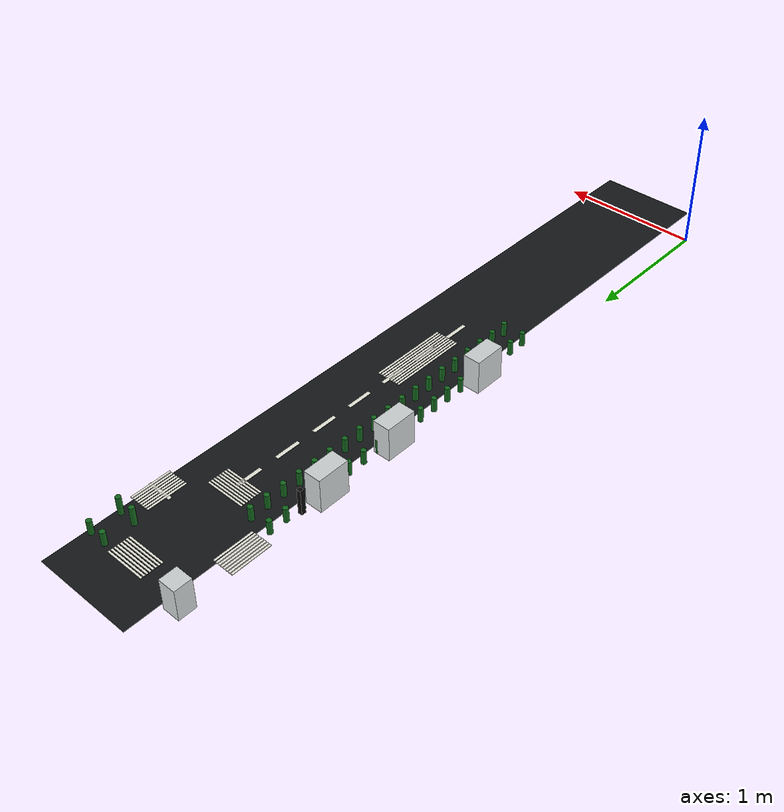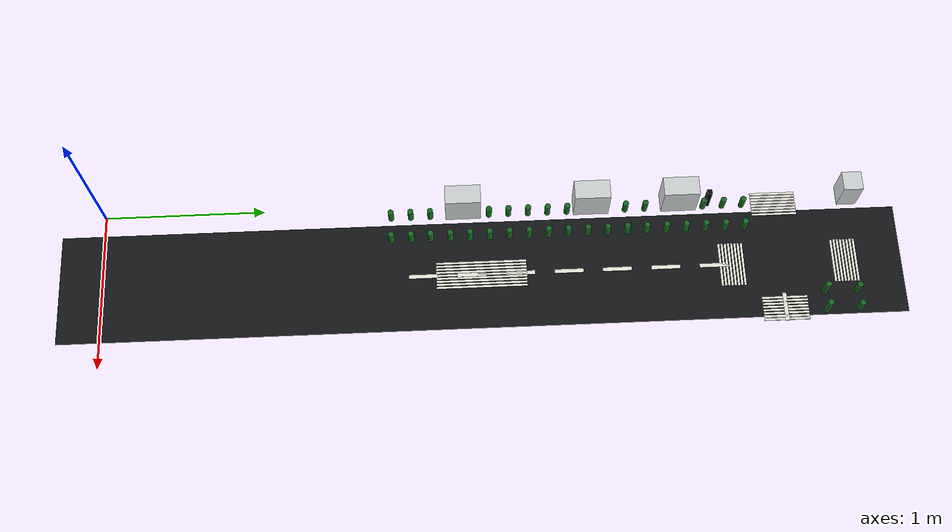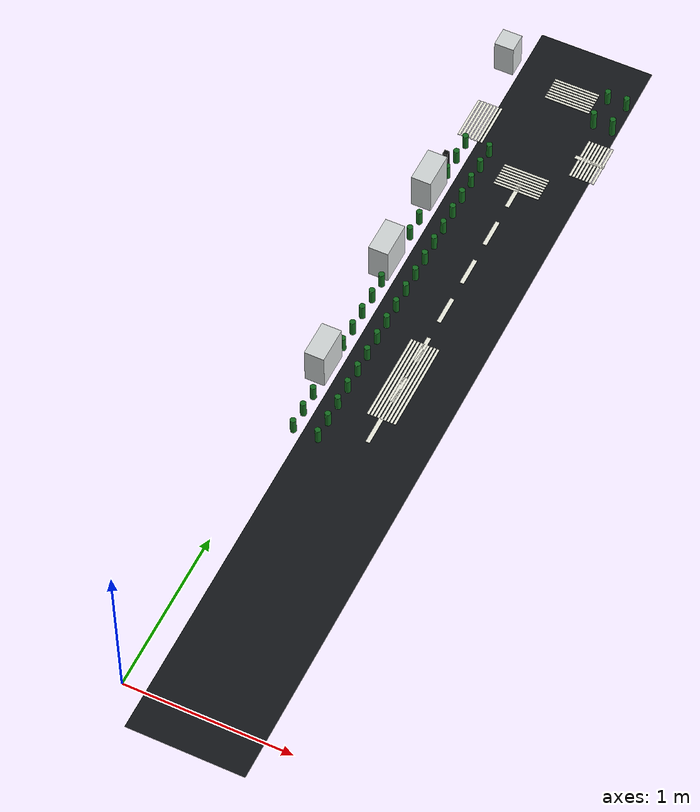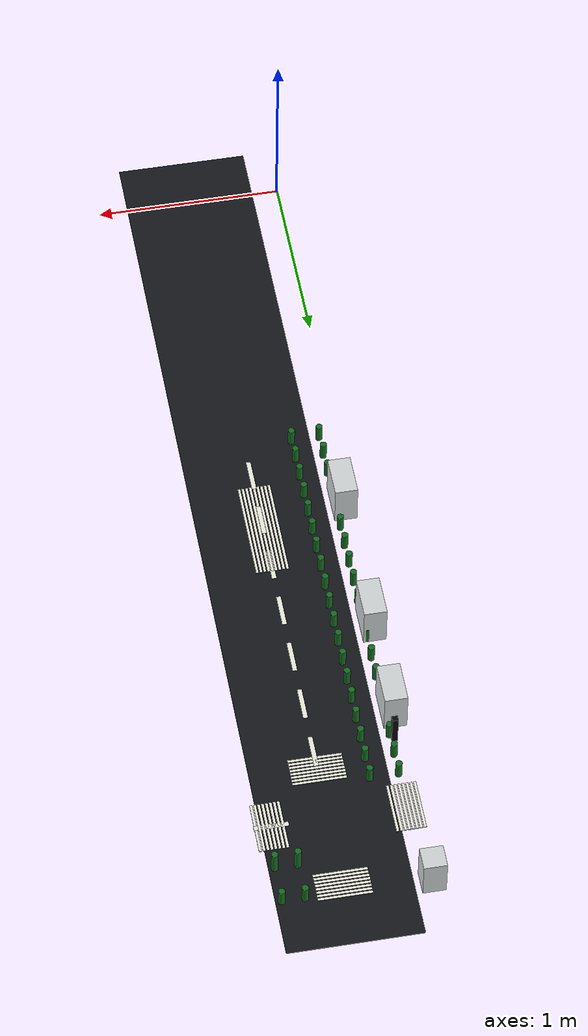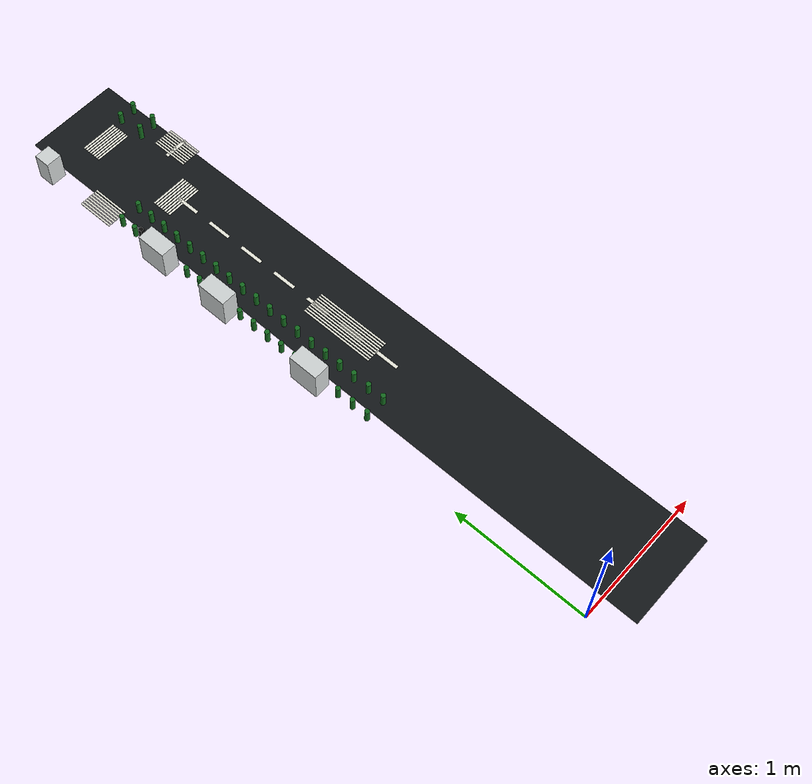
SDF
<sdf version="1.7">
 <world name="sandbox">
  <model name="RD-RING-W">
   <static>true</static>
   <pose>0.5 2.35 0.051000000000000004 0 0 0</pose>
   <link name="link">
    <collision name="collision">
     <geometry><box><size>0.7000000000000001 5.2 0.002</size></box></geometry>
    </collision>
    <visual name="visual">
     <geometry><box><size>0.7000000000000001 5.2 0.002</size></box></geometry>
     <material><ambient>0.08 0.09 0.1 1</ambient><diffuse>0.08 0.09 0.1 1</diffuse></material>
    </visual>
   </link>
  </model>
  <model name="LM-RING-W-05">
   <static>true</static>
   <pose>0.5 1.9900000000000002 0.05450000000000001 0 0 0</pose>
   <link name="link">
    <collision name="collision"><geometry><box><size>0.025 0.18 0.004</size></box></geometry></collision>
    <visual name="visual">
     <geometry><box><size>0.025 0.18 0.004</size></box></geometry>
     <material><ambient>0.93 0.93 0.88 1</ambient><diffuse>0.93 0.93 0.88 1</diffuse></material>
    </visual>
   </link>
  </model>
  <model name="LM-RING-W-06">
   <static>true</static>
   <pose>0.5 2.29 0.05450000000000001 0 0 0</pose>
   <link name="link">
    <collision name="collision"><geometry><box><size>0.025 0.18 0.004</size></box></geometry></collision>
    <visual name="visual">
     <geometry><box><size>0.025 0.18 0.004</size></box></geometry>
     <material><ambient>0.93 0.93 0.88 1</ambient><diffuse>0.93 0.93 0.88 1</diffuse></material>
    </visual>
   </link>
  </model>
  <model name="LM-RING-W-07">
   <static>true</static>
   <pose>0.5 2.59 0.05450000000000001 0 0 0</pose>
   <link name="link">
    <collision name="collision"><geometry><box><size>0.025 0.18 0.004</size></box></geometry></collision>
    <visual name="visual">
     <geometry><box><size>0.025 0.18 0.004</size></box></geometry>
     <material><ambient>0.93 0.93 0.88 1</ambient><diffuse>0.93 0.93 0.88 1</diffuse></material>
    </visual>
   </link>
  </model>
  <model name="LM-RING-W-08">
   <static>true</static>
   <pose>0.5 2.89 0.05450000000000001 0 0 0</pose>
   <link name="link">
    <collision name="collision"><geometry><box><size>0.025 0.18 0.004</size></box></geometry></collision>
    <visual name="visual">
     <geometry><box><size>0.025 0.18 0.004</size></box></geometry>
     <material><ambient>0.93 0.93 0.88 1</ambient><diffuse>0.93 0.93 0.88 1</diffuse></material>
    </visual>
   </link>
  </model>
  <model name="LM-RING-W-09">
   <static>true</static>
   <pose>0.5 3.19 0.05450000000000001 0 0 0</pose>
   <link name="link">
    <collision name="collision"><geometry><box><size>0.025 0.18 0.004</size></box></geometry></collision>
    <visual name="visual">
     <geometry><box><size>0.025 0.18 0.004</size></box></geometry>
     <material><ambient>0.93 0.93 0.88 1</ambient><diffuse>0.93 0.93 0.88 1</diffuse></material>
    </visual>
   </link>
  </model>
  <model name="LM-RING-W-10">
   <static>true</static>
   <pose>0.5 3.4899999999999998 0.05450000000000001 0 0 0</pose>
   <link name="link">
    <collision name="collision"><geometry><box><size>0.025 0.18 0.004</size></box></geometry></collision>
    <visual name="visual">
     <geometry><box><size>0.025 0.18 0.004</size></box></geometry>
     <material><ambient>0.93 0.93 0.88 1</ambient><diffuse>0.93 0.93 0.88 1</diffuse></material>
    </visual>
   </link>
  </model>
  <model name="LM-RING-W-11">
   <static>true</static>
   <pose>0.5 3.79 0.05450000000000001 0 0 0</pose>
   <link name="link">
    <collision name="collision"><geometry><box><size>0.025 0.18 0.004</size></box></geometry></collision>
    <visual name="visual">
     <geometry><box><size>0.025 0.18 0.004</size></box></geometry>
     <material><ambient>0.93 0.93 0.88 1</ambient><diffuse>0.93 0.93 0.88 1</diffuse></material>
    </visual>
   </link>
  </model>
  <model name="LM-RING-N-01">
   <static>true</static>
   <pose>0.79 4.2 0.05450000000000001 0 0 0</pose>
   <link name="link">
    <collision name="collision"><geometry><box><size>0.18 0.025 0.004</size></box></geometry></collision>
    <visual name="visual">
     <geometry><box><size>0.18 0.025 0.004</size></box></geometry>
     <material><ambient>0.93 0.93 0.88 1</ambient><diffuse>0.93 0.93 0.88 1</diffuse></material>
    </visual>
   </link>
  </model>
  <model name="CW-NW-X-01">
   <static>true</static>
   <pose>0.5 3.83 0.05450000000000001 0 0 0</pose>
   <link name="link">
    <collision name="collision"><geometry><box><size>0.28 0.014 0.004</size></box></geometry></collision>
    <visual name="visual">
     <geometry><box><size>0.28 0.014 0.004</size></box></geometry>
     <material><ambient>0.93 0.93 0.88 1</ambient><diffuse>0.93 0.93 0.88 1</diffuse></material>
    </visual>
   </link>
  </model>
  <model name="CW-NW-X-02">
   <static>true</static>
   <pose>0.5 3.85 0.05450000000000001 0 0 0</pose>
   <link name="link">
    <collision name="collision"><geometry><box><size>0.28 0.014 0.004</size></box></geometry></collision>
    <visual name="visual">
     <geometry><box><size>0.28 0.014 0.004</size></box></geometry>
     <material><ambient>0.93 0.93 0.88 1</ambient><diffuse>0.93 0.93 0.88 1</diffuse></material>
    </visual>
   </link>
  </model>
  <model name="CW-NW-X-03">
   <static>true</static>
   <pose>0.5 3.87 0.05450000000000001 0 0 0</pose>
   <link name="link">
    <collision name="collision"><geometry><box><size>0.28 0.014 0.004</size></box></geometry></collision>
    <visual name="visual">
     <geometry><box><size>0.28 0.014 0.004</size></box></geometry>
     <material><ambient>0.93 0.93 0.88 1</ambient><diffuse>0.93 0.93 0.88 1</diffuse></material>
    </visual>
   </link>
  </model>
  <model name="CW-NW-X-04">
   <static>true</static>
   <pose>0.5 3.89 0.05450000000000001 0 0 0</pose>
   <link name="link">
    <collision name="collision"><geometry><box><size>0.28 0.014 0.004</size></box></geometry></collision>
    <visual name="visual">
     <geometry><box><size>0.28 0.014 0.004</size></box></geometry>
     <material><ambient>0.93 0.93 0.88 1</ambient><diffuse>0.93 0.93 0.88 1</diffuse></material>
    </visual>
   </link>
  </model>
  <model name="CW-NW-X-05">
   <static>true</static>
   <pose>0.5 3.9099999999999997 0.05450000000000001 0 0 0</pose>
   <link name="link">
    <collision name="collision"><geometry><box><size>0.28 0.014 0.004</size></box></geometry></collision>
    <visual name="visual">
     <geometry><box><size>0.28 0.014 0.004</size></box></geometry>
     <material><ambient>0.93 0.93 0.88 1</ambient><diffuse>0.93 0.93 0.88 1</diffuse></material>
    </visual>
   </link>
  </model>
  <model name="CW-NW-X-06">
   <static>true</static>
   <pose>0.5 3.9299999999999997 0.05450000000000001 0 0 0</pose>
   <link name="link">
    <collision name="collision"><geometry><box><size>0.28 0.014 0.004</size></box></geometry></collision>
    <visual name="visual">
     <geometry><box><size>0.28 0.014 0.004</size></box></geometry>
     <material><ambient>0.93 0.93 0.88 1</ambient><diffuse>0.93 0.93 0.88 1</diffuse></material>
    </visual>
   </link>
  </model>
  <model name="CW-NW-X-07">
   <static>true</static>
   <pose>0.5 3.9499999999999997 0.05450000000000001 0 0 0</pose>
   <link name="link">
    <collision name="collision"><geometry><box><size>0.28 0.014 0.004</size></box></geometry></collision>
    <visual name="visual">
     <geometry><box><size>0.28 0.014 0.004</size></box></geometry>
     <material><ambient>0.93 0.93 0.88 1</ambient><diffuse>0.93 0.93 0.88 1</diffuse></material>
    </visual>
   </link>
  </model>
  <model name="CW-NW-X-08">
   <static>true</static>
   <pose>0.5 3.9699999999999998 0.05450000000000001 0 0 0</pose>
   <link name="link">
    <collision name="collision"><geometry><box><size>0.28 0.014 0.004</size></box></geometry></collision>
    <visual name="visual">
     <geometry><box><size>0.28 0.014 0.004</size></box></geometry>
     <material><ambient>0.93 0.93 0.88 1</ambient><diffuse>0.93 0.93 0.88 1</diffuse></material>
    </visual>
   </link>
  </model>
  <model name="CW-NW-Y-01">
   <static>true</static>
   <pose>0.73 4.2 0.05450000000000001 0 0 0</pose>
   <link name="link">
    <collision name="collision"><geometry><box><size>0.014 0.28 0.004</size></box></geometry></collision>
    <visual name="visual">
     <geometry><box><size>0.014 0.28 0.004</size></box></geometry>
     <material><ambient>0.93 0.93 0.88 1</ambient><diffuse>0.93 0.93 0.88 1</diffuse></material>
    </visual>
   </link>
  </model>
  <model name="CW-NW-Y-02">
   <static>true</static>
   <pose>0.75 4.2 0.05450000000000001 0 0 0</pose>
   <link name="link">
    <collision name="collision"><geometry><box><size>0.014 0.28 0.004</size></box></geometry></collision>
    <visual name="visual">
     <geometry><box><size>0.014 0.28 0.004</size></box></geometry>
     <material><ambient>0.93 0.93 0.88 1</ambient><diffuse>0.93 0.93 0.88 1</diffuse></material>
    </visual>
   </link>
  </model>
  <model name="CW-NW-Y-03">
   <static>true</static>
   <pose>0.77 4.2 0.05450000000000001 0 0 0</pose>
   <link name="link">
    <collision name="collision"><geometry><box><size>0.014 0.28 0.004</size></box></geometry></collision>
    <visual name="visual">
     <geometry><box><size>0.014 0.28 0.004</size></box></geometry>
     <material><ambient>0.93 0.93 0.88 1</ambient><diffuse>0.93 0.93 0.88 1</diffuse></material>
    </visual>
   </link>
  </model>
  <model name="CW-NW-Y-04">
   <static>true</static>
   <pose>0.79 4.2 0.05450000000000001 0 0 0</pose>
   <link name="link">
    <collision name="collision"><geometry><box><size>0.014 0.28 0.004</size></box></geometry></collision>
    <visual name="visual">
     <geometry><box><size>0.014 0.28 0.004</size></box></geometry>
     <material><ambient>0.93 0.93 0.88 1</ambient><diffuse>0.93 0.93 0.88 1</diffuse></material>
    </visual>
   </link>
  </model>
  <model name="CW-NW-Y-05">
   <static>true</static>
   <pose>0.81 4.2 0.05450000000000001 0 0 0</pose>
   <link name="link">
    <collision name="collision"><geometry><box><size>0.014 0.28 0.004</size></box></geometry></collision>
    <visual name="visual">
     <geometry><box><size>0.014 0.28 0.004</size></box></geometry>
     <material><ambient>0.93 0.93 0.88 1</ambient><diffuse>0.93 0.93 0.88 1</diffuse></material>
    </visual>
   </link>
  </model>
  <model name="CW-NW-Y-06">
   <static>true</static>
   <pose>0.8300000000000001 4.2 0.05450000000000001 0 0 0</pose>
   <link name="link">
    <collision name="collision"><geometry><box><size>0.014 0.28 0.004</size></box></geometry></collision>
    <visual name="visual">
     <geometry><box><size>0.014 0.28 0.004</size></box></geometry>
     <material><ambient>0.93 0.93 0.88 1</ambient><diffuse>0.93 0.93 0.88 1</diffuse></material>
    </visual>
   </link>
  </model>
  <model name="CW-NW-Y-07">
   <static>true</static>
   <pose>0.8500000000000001 4.2 0.05450000000000001 0 0 0</pose>
   <link name="link">
    <collision name="collision"><geometry><box><size>0.014 0.28 0.004</size></box></geometry></collision>
    <visual name="visual">
     <geometry><box><size>0.014 0.28 0.004</size></box></geometry>
     <material><ambient>0.93 0.93 0.88 1</ambient><diffuse>0.93 0.93 0.88 1</diffuse></material>
    </visual>
   </link>
  </model>
  <model name="CW-NW-Y-08">
   <static>true</static>
   <pose>0.8700000000000001 4.2 0.05450000000000001 0 0 0</pose>
   <link name="link">
    <collision name="collision"><geometry><box><size>0.014 0.28 0.004</size></box></geometry></collision>
    <visual name="visual">
     <geometry><box><size>0.014 0.28 0.004</size></box></geometry>
     <material><ambient>0.93 0.93 0.88 1</ambient><diffuse>0.93 0.93 0.88 1</diffuse></material>
    </visual>
   </link>
  </model>
  <model name="CW-C-W-01">
   <static>true</static>
   <pose>0.42 2.35 0.05450000000000001 0 0 0</pose>
   <link name="link">
    <collision name="collision"><geometry><box><size>0.014 0.56 0.004</size></box></geometry></collision>
    <visual name="visual">
     <geometry><box><size>0.014 0.56 0.004</size></box></geometry>
     <material><ambient>0.93 0.93 0.88 1</ambient><diffuse>0.93 0.93 0.88 1</diffuse></material>
    </visual>
   </link>
  </model>
  <model name="CW-C-W-02">
   <static>true</static>
   <pose>0.44 2.35 0.05450000000000001 0 0 0</pose>
   <link name="link">
    <collision name="collision"><geometry><box><size>0.014 0.56 0.004</size></box></geometry></collision>
    <visual name="visual">
     <geometry><box><size>0.014 0.56 0.004</size></box></geometry>
     <material><ambient>0.93 0.93 0.88 1</ambient><diffuse>0.93 0.93 0.88 1</diffuse></material>
    </visual>
   </link>
  </model>
  <model name="CW-C-W-03">
   <static>true</static>
   <pose>0.46 2.35 0.05450000000000001 0 0 0</pose>
   <link name="link">
    <collision name="collision"><geometry><box><size>0.014 0.56 0.004</size></box></geometry></collision>
    <visual name="visual">
     <geometry><box><size>0.014 0.56 0.004</size></box></geometry>
     <material><ambient>0.93 0.93 0.88 1</ambient><diffuse>0.93 0.93 0.88 1</diffuse></material>
    </visual>
   </link>
  </model>
  <model name="CW-C-W-04">
   <static>true</static>
   <pose>0.48 2.35 0.05450000000000001 0 0 0</pose>
   <link name="link">
    <collision name="collision"><geometry><box><size>0.014 0.56 0.004</size></box></geometry></collision>
    <visual name="visual">
     <geometry><box><size>0.014 0.56 0.004</size></box></geometry>
     <material><ambient>0.93 0.93 0.88 1</ambient><diffuse>0.93 0.93 0.88 1</diffuse></material>
    </visual>
   </link>
  </model>
  <model name="CW-C-W-05">
   <static>true</static>
   <pose>0.5 2.35 0.05450000000000001 0 0 0</pose>
   <link name="link">
    <collision name="collision"><geometry><box><size>0.014 0.56 0.004</size></box></geometry></collision>
    <visual name="visual">
     <geometry><box><size>0.014 0.56 0.004</size></box></geometry>
     <material><ambient>0.93 0.93 0.88 1</ambient><diffuse>0.93 0.93 0.88 1</diffuse></material>
    </visual>
   </link>
  </model>
  <model name="CW-C-W-06">
   <static>true</static>
   <pose>0.52 2.35 0.05450000000000001 0 0 0</pose>
   <link name="link">
    <collision name="collision"><geometry><box><size>0.014 0.56 0.004</size></box></geometry></collision>
    <visual name="visual">
     <geometry><box><size>0.014 0.56 0.004</size></box></geometry>
     <material><ambient>0.93 0.93 0.88 1</ambient><diffuse>0.93 0.93 0.88 1</diffuse></material>
    </visual>
   </link>
  </model>
  <model name="CW-C-W-07">
   <static>true</static>
   <pose>0.54 2.35 0.05450000000000001 0 0 0</pose>
   <link name="link">
    <collision name="collision"><geometry><box><size>0.014 0.56 0.004</size></box></geometry></collision>
    <visual name="visual">
     <geometry><box><size>0.014 0.56 0.004</size></box></geometry>
     <material><ambient>0.93 0.93 0.88 1</ambient><diffuse>0.93 0.93 0.88 1</diffuse></material>
    </visual>
   </link>
  </model>
  <model name="CW-C-W-08">
   <static>true</static>
   <pose>0.56 2.35 0.05450000000000001 0 0 0</pose>
   <link name="link">
    <collision name="collision"><geometry><box><size>0.014 0.56 0.004</size></box></geometry></collision>
    <visual name="visual">
     <geometry><box><size>0.014 0.56 0.004</size></box></geometry>
     <material><ambient>0.93 0.93 0.88 1</ambient><diffuse>0.93 0.93 0.88 1</diffuse></material>
    </visual>
   </link>
  </model>
  <model name="CW-C-W-09">
   <static>true</static>
   <pose>0.58 2.35 0.05450000000000001 0 0 0</pose>
   <link name="link">
    <collision name="collision"><geometry><box><size>0.014 0.56 0.004</size></box></geometry></collision>
    <visual name="visual">
     <geometry><box><size>0.014 0.56 0.004</size></box></geometry>
     <material><ambient>0.93 0.93 0.88 1</ambient><diffuse>0.93 0.93 0.88 1</diffuse></material>
    </visual>
   </link>
  </model>
  <model name="CW-EXT-W-N-01">
   <static>true</static>
   <pose>0.5 4.53 0.05450000000000001 0 0 0</pose>
   <link name="link">
    <collision name="collision"><geometry><box><size>0.28 0.014 0.004</size></box></geometry></collision>
    <visual name="visual">
     <geometry><box><size>0.28 0.014 0.004</size></box></geometry>
     <material><ambient>0.93 0.93 0.88 1</ambient><diffuse>0.93 0.93 0.88 1</diffuse></material>
    </visual>
   </link>
  </model>
  <model name="CW-EXT-W-N-02">
   <static>true</static>
   <pose>0.5 4.550000000000001 0.05450000000000001 0 0 0</pose>
   <link name="link">
    <collision name="collision"><geometry><box><size>0.28 0.014 0.004</size></box></geometry></collision>
    <visual name="visual">
     <geometry><box><size>0.28 0.014 0.004</size></box></geometry>
     <material><ambient>0.93 0.93 0.88 1</ambient><diffuse>0.93 0.93 0.88 1</diffuse></material>
    </visual>
   </link>
  </model>
  <model name="CW-EXT-W-N-03">
   <static>true</static>
   <pose>0.5 4.57 0.05450000000000001 0 0 0</pose>
   <link name="link">
    <collision name="collision"><geometry><box><size>0.28 0.014 0.004</size></box></geometry></collision>
    <visual name="visual">
     <geometry><box><size>0.28 0.014 0.004</size></box></geometry>
     <material><ambient>0.93 0.93 0.88 1</ambient><diffuse>0.93 0.93 0.88 1</diffuse></material>
    </visual>
   </link>
  </model>
  <model name="CW-EXT-W-N-04">
   <static>true</static>
   <pose>0.5 4.590000000000001 0.05450000000000001 0 0 0</pose>
   <link name="link">
    <collision name="collision"><geometry><box><size>0.28 0.014 0.004</size></box></geometry></collision>
    <visual name="visual">
     <geometry><box><size>0.28 0.014 0.004</size></box></geometry>
     <material><ambient>0.93 0.93 0.88 1</ambient><diffuse>0.93 0.93 0.88 1</diffuse></material>
    </visual>
   </link>
  </model>
  <model name="CW-EXT-W-N-05">
   <static>true</static>
   <pose>0.5 4.61 0.05450000000000001 0 0 0</pose>
   <link name="link">
    <collision name="collision"><geometry><box><size>0.28 0.014 0.004</size></box></geometry></collision>
    <visual name="visual">
     <geometry><box><size>0.28 0.014 0.004</size></box></geometry>
     <material><ambient>0.93 0.93 0.88 1</ambient><diffuse>0.93 0.93 0.88 1</diffuse></material>
    </visual>
   </link>
  </model>
  <model name="CW-EXT-W-N-06">
   <static>true</static>
   <pose>0.5 4.630000000000001 0.05450000000000001 0 0 0</pose>
   <link name="link">
    <collision name="collision"><geometry><box><size>0.28 0.014 0.004</size></box></geometry></collision>
    <visual name="visual">
     <geometry><box><size>0.28 0.014 0.004</size></box></geometry>
     <material><ambient>0.93 0.93 0.88 1</ambient><diffuse>0.93 0.93 0.88 1</diffuse></material>
    </visual>
   </link>
  </model>
  <model name="CW-EXT-W-N-07">
   <static>true</static>
   <pose>0.5 4.65 0.05450000000000001 0 0 0</pose>
   <link name="link">
    <collision name="collision"><geometry><box><size>0.28 0.014 0.004</size></box></geometry></collision>
    <visual name="visual">
     <geometry><box><size>0.28 0.014 0.004</size></box></geometry>
     <material><ambient>0.93 0.93 0.88 1</ambient><diffuse>0.93 0.93 0.88 1</diffuse></material>
    </visual>
   </link>
  </model>
  <model name="CW-EXT-W-N-08">
   <static>true</static>
   <pose>0.5 4.670000000000001 0.05450000000000001 0 0 0</pose>
   <link name="link">
    <collision name="collision"><geometry><box><size>0.28 0.014 0.004</size></box></geometry></collision>
    <visual name="visual">
     <geometry><box><size>0.28 0.014 0.004</size></box></geometry>
     <material><ambient>0.93 0.93 0.88 1</ambient><diffuse>0.93 0.93 0.88 1</diffuse></material>
    </visual>
   </link>
  </model>
  <model name="CW-EXT-N-W-01">
   <static>true</static>
   <pose>0.03 4.2 0.05450000000000001 0 0 0</pose>
   <link name="link">
    <collision name="collision"><geometry><box><size>0.014 0.28 0.004</size></box></geometry></collision>
    <visual name="visual">
     <geometry><box><size>0.014 0.28 0.004</size></box></geometry>
     <material><ambient>0.93 0.93 0.88 1</ambient><diffuse>0.93 0.93 0.88 1</diffuse></material>
    </visual>
   </link>
  </model>
  <model name="CW-EXT-N-W-02">
   <static>true</static>
   <pose>0.05 4.2 0.05450000000000001 0 0 0</pose>
   <link name="link">
    <collision name="collision"><geometry><box><size>0.014 0.28 0.004</size></box></geometry></collision>
    <visual name="visual">
     <geometry><box><size>0.014 0.28 0.004</size></box></geometry>
     <material><ambient>0.93 0.93 0.88 1</ambient><diffuse>0.93 0.93 0.88 1</diffuse></material>
    </visual>
   </link>
  </model>
  <model name="CW-EXT-N-W-03">
   <static>true</static>
   <pose>0.07 4.2 0.05450000000000001 0 0 0</pose>
   <link name="link">
    <collision name="collision"><geometry><box><size>0.014 0.28 0.004</size></box></geometry></collision>
    <visual name="visual">
     <geometry><box><size>0.014 0.28 0.004</size></box></geometry>
     <material><ambient>0.93 0.93 0.88 1</ambient><diffuse>0.93 0.93 0.88 1</diffuse></material>
    </visual>
   </link>
  </model>
  <model name="CW-EXT-N-W-04">
   <static>true</static>
   <pose>0.09000000000000001 4.2 0.05450000000000001 0 0 0</pose>
   <link name="link">
    <collision name="collision"><geometry><box><size>0.014 0.28 0.004</size></box></geometry></collision>
    <visual name="visual">
     <geometry><box><size>0.014 0.28 0.004</size></box></geometry>
     <material><ambient>0.93 0.93 0.88 1</ambient><diffuse>0.93 0.93 0.88 1</diffuse></material>
    </visual>
   </link>
  </model>
  <model name="CW-EXT-N-W-05">
   <static>true</static>
   <pose>0.11 4.2 0.05450000000000001 0 0 0</pose>
   <link name="link">
    <collision name="collision"><geometry><box><size>0.014 0.28 0.004</size></box></geometry></collision>
    <visual name="visual">
     <geometry><box><size>0.014 0.28 0.004</size></box></geometry>
     <material><ambient>0.93 0.93 0.88 1</ambient><diffuse>0.93 0.93 0.88 1</diffuse></material>
    </visual>
   </link>
  </model>
  <model name="CW-EXT-N-W-06">
   <static>true</static>
   <pose>0.13 4.2 0.05450000000000001 0 0 0</pose>
   <link name="link">
    <collision name="collision"><geometry><box><size>0.014 0.28 0.004</size></box></geometry></collision>
    <visual name="visual">
     <geometry><box><size>0.014 0.28 0.004</size></box></geometry>
     <material><ambient>0.93 0.93 0.88 1</ambient><diffuse>0.93 0.93 0.88 1</diffuse></material>
    </visual>
   </link>
  </model>
  <model name="CW-EXT-N-W-07">
   <static>true</static>
   <pose>0.15000000000000002 4.2 0.05450000000000001 0 0 0</pose>
   <link name="link">
    <collision name="collision"><geometry><box><size>0.014 0.28 0.004</size></box></geometry></collision>
    <visual name="visual">
     <geometry><box><size>0.014 0.28 0.004</size></box></geometry>
     <material><ambient>0.93 0.93 0.88 1</ambient><diffuse>0.93 0.93 0.88 1</diffuse></material>
    </visual>
   </link>
  </model>
  <model name="CW-EXT-N-W-08">
   <static>true</static>
   <pose>0.17 4.2 0.05450000000000001 0 0 0</pose>
   <link name="link">
    <collision name="collision"><geometry><box><size>0.014 0.28 0.004</size></box></geometry></collision>
    <visual name="visual">
     <geometry><box><size>0.014 0.28 0.004</size></box></geometry>
     <material><ambient>0.93 0.93 0.88 1</ambient><diffuse>0.93 0.93 0.88 1</diffuse></material>
    </visual>
   </link>
  </model>
  <model name="BLD-F01">
   <static>true</static>
   <pose>0.06 4.66 0.16 0 0 0</pose>
   <link name="link">
    <collision name="collision"><geometry><box><size>0.12 0.12 0.22</size></box></geometry></collision>
    <visual name="visual">
     <geometry><box><size>0.12 0.12 0.22</size></box></geometry>
     <material><ambient>0.82 0.84 0.84 1</ambient><diffuse>0.82 0.84 0.84 1</diffuse></material>
    </visual>
   </link>
  </model>
  <model name="BLD-L02">
   <static>true</static>
   <pose>0.06 2.25 0.16999999999999998 0 0 0</pose>
   <link name="link">
    <collision name="collision"><geometry><box><size>0.12 0.22 0.24</size></box></geometry></collision>
    <visual name="visual">
     <geometry><box><size>0.12 0.22 0.24</size></box></geometry>
     <material><ambient>0.82 0.84 0.84 1</ambient><diffuse>0.82 0.84 0.84 1</diffuse></material>
    </visual>
   </link>
  </model>
  <model name="BLD-L03">
   <static>true</static>
   <pose>0.06 3.0500000000000003 0.16999999999999998 0 0 0</pose>
   <link name="link">
    <collision name="collision"><geometry><box><size>0.12 0.22 0.24</size></box></geometry></collision>
    <visual name="visual">
     <geometry><box><size>0.12 0.22 0.24</size></box></geometry>
     <material><ambient>0.82 0.84 0.84 1</ambient><diffuse>0.82 0.84 0.84 1</diffuse></material>
    </visual>
   </link>
  </model>
  <model name="BLD-L04">
   <static>true</static>
   <pose>0.06 3.6 0.16999999999999998 0 0 0</pose>
   <link name="link">
    <collision name="collision"><geometry><box><size>0.12 0.22 0.24</size></box></geometry></collision>
    <visual name="visual">
     <geometry><box><size>0.12 0.22 0.24</size></box></geometry>
     <material><ambient>0.82 0.84 0.84 1</ambient><diffuse>0.82 0.84 0.84 1</diffuse></material>
    </visual>
   </link>
  </model>
  <model name="TR-L01-10">
   <static>true</static>
   <pose>0.1 1.7999999999999998 0.1 0 0 0</pose>
   <link name="link">
    <collision name="collision">
     <geometry><cylinder><radius>0.0175</radius><length>0.1</length></cylinder></geometry>
    </collision>
    <visual name="visual">
     <geometry><cylinder><radius>0.0175</radius><length>0.1</length></cylinder></geometry>
     <material><ambient>0.08 0.42 0.12 1</ambient><diffuse>0.08 0.42 0.12 1</diffuse></material>
    </visual>
   </link>
  </model>
  <model name="TR-L01-11">
   <static>true</static>
   <pose>0.1 1.922222222222222 0.1 0 0 0</pose>
   <link name="link">
    <collision name="collision">
     <geometry><cylinder><radius>0.0175</radius><length>0.1</length></cylinder></geometry>
    </collision>
    <visual name="visual">
     <geometry><cylinder><radius>0.0175</radius><length>0.1</length></cylinder></geometry>
     <material><ambient>0.08 0.42 0.12 1</ambient><diffuse>0.08 0.42 0.12 1</diffuse></material>
    </visual>
   </link>
  </model>
  <model name="TR-L01-12">
   <static>true</static>
   <pose>0.1 2.0444444444444443 0.1 0 0 0</pose>
   <link name="link">
    <collision name="collision">
     <geometry><cylinder><radius>0.0175</radius><length>0.1</length></cylinder></geometry>
    </collision>
    <visual name="visual">
     <geometry><cylinder><radius>0.0175</radius><length>0.1</length></cylinder></geometry>
     <material><ambient>0.08 0.42 0.12 1</ambient><diffuse>0.08 0.42 0.12 1</diffuse></material>
    </visual>
   </link>
  </model>
  <model name="TR-L01-13">
   <static>true</static>
   <pose>0.1 2.1666666666666665 0.1 0 0 0</pose>
   <link name="link">
    <collision name="collision">
     <geometry><cylinder><radius>0.0175</radius><length>0.1</length></cylinder></geometry>
    </collision>
    <visual name="visual">
     <geometry><cylinder><radius>0.0175</radius><length>0.1</length></cylinder></geometry>
     <material><ambient>0.08 0.42 0.12 1</ambient><diffuse>0.08 0.42 0.12 1</diffuse></material>
    </visual>
   </link>
  </model>
  <model name="TR-L01-14">
   <static>true</static>
   <pose>0.1 2.2888888888888888 0.1 0 0 0</pose>
   <link name="link">
    <collision name="collision">
     <geometry><cylinder><radius>0.0175</radius><length>0.1</length></cylinder></geometry>
    </collision>
    <visual name="visual">
     <geometry><cylinder><radius>0.0175</radius><length>0.1</length></cylinder></geometry>
     <material><ambient>0.08 0.42 0.12 1</ambient><diffuse>0.08 0.42 0.12 1</diffuse></material>
    </visual>
   </link>
  </model>
  <model name="TR-L01-15">
   <static>true</static>
   <pose>0.1 2.411111111111111 0.1 0 0 0</pose>
   <link name="link">
    <collision name="collision">
     <geometry><cylinder><radius>0.0175</radius><length>0.1</length></cylinder></geometry>
    </collision>
    <visual name="visual">
     <geometry><cylinder><radius>0.0175</radius><length>0.1</length></cylinder></geometry>
     <material><ambient>0.08 0.42 0.12 1</ambient><diffuse>0.08 0.42 0.12 1</diffuse></material>
    </visual>
   </link>
  </model>
  <model name="TR-L01-16">
   <static>true</static>
   <pose>0.1 2.533333333333333 0.1 0 0 0</pose>
   <link name="link">
    <collision name="collision">
     <geometry><cylinder><radius>0.0175</radius><length>0.1</length></cylinder></geometry>
    </collision>
    <visual name="visual">
     <geometry><cylinder><radius>0.0175</radius><length>0.1</length></cylinder></geometry>
     <material><ambient>0.08 0.42 0.12 1</ambient><diffuse>0.08 0.42 0.12 1</diffuse></material>
    </visual>
   </link>
  </model>
  <model name="TR-L01-17">
   <static>true</static>
   <pose>0.1 2.6555555555555554 0.1 0 0 0</pose>
   <link name="link">
    <collision name="collision">
     <geometry><cylinder><radius>0.0175</radius><length>0.1</length></cylinder></geometry>
    </collision>
    <visual name="visual">
     <geometry><cylinder><radius>0.0175</radius><length>0.1</length></cylinder></geometry>
     <material><ambient>0.08 0.42 0.12 1</ambient><diffuse>0.08 0.42 0.12 1</diffuse></material>
    </visual>
   </link>
  </model>
  <model name="TR-L01-18">
   <static>true</static>
   <pose>0.1 2.777777777777778 0.1 0 0 0</pose>
   <link name="link">
    <collision name="collision">
     <geometry><cylinder><radius>0.0175</radius><length>0.1</length></cylinder></geometry>
    </collision>
    <visual name="visual">
     <geometry><cylinder><radius>0.0175</radius><length>0.1</length></cylinder></geometry>
     <material><ambient>0.08 0.42 0.12 1</ambient><diffuse>0.08 0.42 0.12 1</diffuse></material>
    </visual>
   </link>
  </model>
  <model name="TR-L01-19">
   <static>true</static>
   <pose>0.1 2.9 0.1 0 0 0</pose>
   <link name="link">
    <collision name="collision">
     <geometry><cylinder><radius>0.0175</radius><length>0.1</length></cylinder></geometry>
    </collision>
    <visual name="visual">
     <geometry><cylinder><radius>0.0175</radius><length>0.1</length></cylinder></geometry>
     <material><ambient>0.08 0.42 0.12 1</ambient><diffuse>0.08 0.42 0.12 1</diffuse></material>
    </visual>
   </link>
  </model>
  <model name="TR-L01-20">
   <static>true</static>
   <pose>0.1 3.022222222222222 0.1 0 0 0</pose>
   <link name="link">
    <collision name="collision">
     <geometry><cylinder><radius>0.0175</radius><length>0.1</length></cylinder></geometry>
    </collision>
    <visual name="visual">
     <geometry><cylinder><radius>0.0175</radius><length>0.1</length></cylinder></geometry>
     <material><ambient>0.08 0.42 0.12 1</ambient><diffuse>0.08 0.42 0.12 1</diffuse></material>
    </visual>
   </link>
  </model>
  <model name="TR-L01-21">
   <static>true</static>
   <pose>0.1 3.1444444444444444 0.1 0 0 0</pose>
   <link name="link">
    <collision name="collision">
     <geometry><cylinder><radius>0.0175</radius><length>0.1</length></cylinder></geometry>
    </collision>
    <visual name="visual">
     <geometry><cylinder><radius>0.0175</radius><length>0.1</length></cylinder></geometry>
     <material><ambient>0.08 0.42 0.12 1</ambient><diffuse>0.08 0.42 0.12 1</diffuse></material>
    </visual>
   </link>
  </model>
  <model name="TR-L01-22">
   <static>true</static>
   <pose>0.1 3.2666666666666666 0.1 0 0 0</pose>
   <link name="link">
    <collision name="collision">
     <geometry><cylinder><radius>0.0175</radius><length>0.1</length></cylinder></geometry>
    </collision>
    <visual name="visual">
     <geometry><cylinder><radius>0.0175</radius><length>0.1</length></cylinder></geometry>
     <material><ambient>0.08 0.42 0.12 1</ambient><diffuse>0.08 0.42 0.12 1</diffuse></material>
    </visual>
   </link>
  </model>
  <model name="TR-L01-23">
   <static>true</static>
   <pose>0.1 3.388888888888889 0.1 0 0 0</pose>
   <link name="link">
    <collision name="collision">
     <geometry><cylinder><radius>0.0175</radius><length>0.1</length></cylinder></geometry>
    </collision>
    <visual name="visual">
     <geometry><cylinder><radius>0.0175</radius><length>0.1</length></cylinder></geometry>
     <material><ambient>0.08 0.42 0.12 1</ambient><diffuse>0.08 0.42 0.12 1</diffuse></material>
    </visual>
   </link>
  </model>
  <model name="TR-L01-24">
   <static>true</static>
   <pose>0.1 3.511111111111111 0.1 0 0 0</pose>
   <link name="link">
    <collision name="collision">
     <geometry><cylinder><radius>0.0175</radius><length>0.1</length></cylinder></geometry>
    </collision>
    <visual name="visual">
     <geometry><cylinder><radius>0.0175</radius><length>0.1</length></cylinder></geometry>
     <material><ambient>0.08 0.42 0.12 1</ambient><diffuse>0.08 0.42 0.12 1</diffuse></material>
    </visual>
   </link>
  </model>
  <model name="TR-L01-25">
   <static>true</static>
   <pose>0.1 3.6333333333333333 0.1 0 0 0</pose>
   <link name="link">
    <collision name="collision">
     <geometry><cylinder><radius>0.0175</radius><length>0.1</length></cylinder></geometry>
    </collision>
    <visual name="visual">
     <geometry><cylinder><radius>0.0175</radius><length>0.1</length></cylinder></geometry>
     <material><ambient>0.08 0.42 0.12 1</ambient><diffuse>0.08 0.42 0.12 1</diffuse></material>
    </visual>
   </link>
  </model>
  <model name="TR-L01-26">
   <static>true</static>
   <pose>0.1 3.7555555555555555 0.1 0 0 0</pose>
   <link name="link">
    <collision name="collision">
     <geometry><cylinder><radius>0.0175</radius><length>0.1</length></cylinder></geometry>
    </collision>
    <visual name="visual">
     <geometry><cylinder><radius>0.0175</radius><length>0.1</length></cylinder></geometry>
     <material><ambient>0.08 0.42 0.12 1</ambient><diffuse>0.08 0.42 0.12 1</diffuse></material>
    </visual>
   </link>
  </model>
  <model name="TR-L01-27">
   <static>true</static>
   <pose>0.1 3.8777777777777778 0.1 0 0 0</pose>
   <link name="link">
    <collision name="collision">
     <geometry><cylinder><radius>0.0175</radius><length>0.1</length></cylinder></geometry>
    </collision>
    <visual name="visual">
     <geometry><cylinder><radius>0.0175</radius><length>0.1</length></cylinder></geometry>
     <material><ambient>0.08 0.42 0.12 1</ambient><diffuse>0.08 0.42 0.12 1</diffuse></material>
    </visual>
   </link>
  </model>
  <model name="TR-L01-28">
   <static>true</static>
   <pose>0.1 4.0 0.1 0 0 0</pose>
   <link name="link">
    <collision name="collision">
     <geometry><cylinder><radius>0.0175</radius><length>0.1</length></cylinder></geometry>
    </collision>
    <visual name="visual">
     <geometry><cylinder><radius>0.0175</radius><length>0.1</length></cylinder></geometry>
     <material><ambient>0.08 0.42 0.12 1</ambient><diffuse>0.08 0.42 0.12 1</diffuse></material>
    </visual>
   </link>
  </model>
  <model name="TR-L02-10">
   <static>true</static>
   <pose>0.25 1.7999999999999998 0.1 0 0 0</pose>
   <link name="link">
    <collision name="collision">
     <geometry><cylinder><radius>0.0175</radius><length>0.1</length></cylinder></geometry>
    </collision>
    <visual name="visual">
     <geometry><cylinder><radius>0.0175</radius><length>0.1</length></cylinder></geometry>
     <material><ambient>0.08 0.42 0.12 1</ambient><diffuse>0.08 0.42 0.12 1</diffuse></material>
    </visual>
   </link>
  </model>
  <model name="TR-L02-11">
   <static>true</static>
   <pose>0.25 1.922222222222222 0.1 0 0 0</pose>
   <link name="link">
    <collision name="collision">
     <geometry><cylinder><radius>0.0175</radius><length>0.1</length></cylinder></geometry>
    </collision>
    <visual name="visual">
     <geometry><cylinder><radius>0.0175</radius><length>0.1</length></cylinder></geometry>
     <material><ambient>0.08 0.42 0.12 1</ambient><diffuse>0.08 0.42 0.12 1</diffuse></material>
    </visual>
   </link>
  </model>
  <model name="TR-L02-12">
   <static>true</static>
   <pose>0.25 2.0444444444444443 0.1 0 0 0</pose>
   <link name="link">
    <collision name="collision">
     <geometry><cylinder><radius>0.0175</radius><length>0.1</length></cylinder></geometry>
    </collision>
    <visual name="visual">
     <geometry><cylinder><radius>0.0175</radius><length>0.1</length></cylinder></geometry>
     <material><ambient>0.08 0.42 0.12 1</ambient><diffuse>0.08 0.42 0.12 1</diffuse></material>
    </visual>
   </link>
  </model>
  <model name="TR-L02-13">
   <static>true</static>
   <pose>0.25 2.1666666666666665 0.1 0 0 0</pose>
   <link name="link">
    <collision name="collision">
     <geometry><cylinder><radius>0.0175</radius><length>0.1</length></cylinder></geometry>
    </collision>
    <visual name="visual">
     <geometry><cylinder><radius>0.0175</radius><length>0.1</length></cylinder></geometry>
     <material><ambient>0.08 0.42 0.12 1</ambient><diffuse>0.08 0.42 0.12 1</diffuse></material>
    </visual>
   </link>
  </model>
  <model name="TR-L02-14">
   <static>true</static>
   <pose>0.25 2.2888888888888888 0.1 0 0 0</pose>
   <link name="link">
    <collision name="collision">
     <geometry><cylinder><radius>0.0175</radius><length>0.1</length></cylinder></geometry>
    </collision>
    <visual name="visual">
     <geometry><cylinder><radius>0.0175</radius><length>0.1</length></cylinder></geometry>
     <material><ambient>0.08 0.42 0.12 1</ambient><diffuse>0.08 0.42 0.12 1</diffuse></material>
    </visual>
   </link>
  </model>
  <model name="TR-L02-15">
   <static>true</static>
   <pose>0.25 2.411111111111111 0.1 0 0 0</pose>
   <link name="link">
    <collision name="collision">
     <geometry><cylinder><radius>0.0175</radius><length>0.1</length></cylinder></geometry>
    </collision>
    <visual name="visual">
     <geometry><cylinder><radius>0.0175</radius><length>0.1</length></cylinder></geometry>
     <material><ambient>0.08 0.42 0.12 1</ambient><diffuse>0.08 0.42 0.12 1</diffuse></material>
    </visual>
   </link>
  </model>
  <model name="TR-L02-16">
   <static>true</static>
   <pose>0.25 2.533333333333333 0.1 0 0 0</pose>
   <link name="link">
    <collision name="collision">
     <geometry><cylinder><radius>0.0175</radius><length>0.1</length></cylinder></geometry>
    </collision>
    <visual name="visual">
     <geometry><cylinder><radius>0.0175</radius><length>0.1</length></cylinder></geometry>
     <material><ambient>0.08 0.42 0.12 1</ambient><diffuse>0.08 0.42 0.12 1</diffuse></material>
    </visual>
   </link>
  </model>
  <model name="TR-L02-17">
   <static>true</static>
   <pose>0.25 2.6555555555555554 0.1 0 0 0</pose>
   <link name="link">
    <collision name="collision">
     <geometry><cylinder><radius>0.0175</radius><length>0.1</length></cylinder></geometry>
    </collision>
    <visual name="visual">
     <geometry><cylinder><radius>0.0175</radius><length>0.1</length></cylinder></geometry>
     <material><ambient>0.08 0.42 0.12 1</ambient><diffuse>0.08 0.42 0.12 1</diffuse></material>
    </visual>
   </link>
  </model>
  <model name="TR-L02-18">
   <static>true</static>
   <pose>0.25 2.777777777777778 0.1 0 0 0</pose>
   <link name="link">
    <collision name="collision">
     <geometry><cylinder><radius>0.0175</radius><length>0.1</length></cylinder></geometry>
    </collision>
    <visual name="visual">
     <geometry><cylinder><radius>0.0175</radius><length>0.1</length></cylinder></geometry>
     <material><ambient>0.08 0.42 0.12 1</ambient><diffuse>0.08 0.42 0.12 1</diffuse></material>
    </visual>
   </link>
  </model>
  <model name="TR-L02-19">
   <static>true</static>
   <pose>0.25 2.9 0.1 0 0 0</pose>
   <link name="link">
    <collision name="collision">
     <geometry><cylinder><radius>0.0175</radius><length>0.1</length></cylinder></geometry>
    </collision>
    <visual name="visual">
     <geometry><cylinder><radius>0.0175</radius><length>0.1</length></cylinder></geometry>
     <material><ambient>0.08 0.42 0.12 1</ambient><diffuse>0.08 0.42 0.12 1</diffuse></material>
    </visual>
   </link>
  </model>
  <model name="TR-L02-20">
   <static>true</static>
   <pose>0.25 3.022222222222222 0.1 0 0 0</pose>
   <link name="link">
    <collision name="collision">
     <geometry><cylinder><radius>0.0175</radius><length>0.1</length></cylinder></geometry>
    </collision>
    <visual name="visual">
     <geometry><cylinder><radius>0.0175</radius><length>0.1</length></cylinder></geometry>
     <material><ambient>0.08 0.42 0.12 1</ambient><diffuse>0.08 0.42 0.12 1</diffuse></material>
    </visual>
   </link>
  </model>
  <model name="TR-L02-21">
   <static>true</static>
   <pose>0.25 3.1444444444444444 0.1 0 0 0</pose>
   <link name="link">
    <collision name="collision">
     <geometry><cylinder><radius>0.0175</radius><length>0.1</length></cylinder></geometry>
    </collision>
    <visual name="visual">
     <geometry><cylinder><radius>0.0175</radius><length>0.1</length></cylinder></geometry>
     <material><ambient>0.08 0.42 0.12 1</ambient><diffuse>0.08 0.42 0.12 1</diffuse></material>
    </visual>
   </link>
  </model>
  <model name="TR-L02-22">
   <static>true</static>
   <pose>0.25 3.2666666666666666 0.1 0 0 0</pose>
   <link name="link">
    <collision name="collision">
     <geometry><cylinder><radius>0.0175</radius><length>0.1</length></cylinder></geometry>
    </collision>
    <visual name="visual">
     <geometry><cylinder><radius>0.0175</radius><length>0.1</length></cylinder></geometry>
     <material><ambient>0.08 0.42 0.12 1</ambient><diffuse>0.08 0.42 0.12 1</diffuse></material>
    </visual>
   </link>
  </model>
  <model name="TR-L02-23">
   <static>true</static>
   <pose>0.25 3.388888888888889 0.1 0 0 0</pose>
   <link name="link">
    <collision name="collision">
     <geometry><cylinder><radius>0.0175</radius><length>0.1</length></cylinder></geometry>
    </collision>
    <visual name="visual">
     <geometry><cylinder><radius>0.0175</radius><length>0.1</length></cylinder></geometry>
     <material><ambient>0.08 0.42 0.12 1</ambient><diffuse>0.08 0.42 0.12 1</diffuse></material>
    </visual>
   </link>
  </model>
  <model name="TR-L02-24">
   <static>true</static>
   <pose>0.25 3.511111111111111 0.1 0 0 0</pose>
   <link name="link">
    <collision name="collision">
     <geometry><cylinder><radius>0.0175</radius><length>0.1</length></cylinder></geometry>
    </collision>
    <visual name="visual">
     <geometry><cylinder><radius>0.0175</radius><length>0.1</length></cylinder></geometry>
     <material><ambient>0.08 0.42 0.12 1</ambient><diffuse>0.08 0.42 0.12 1</diffuse></material>
    </visual>
   </link>
  </model>
  <model name="TR-L02-25">
   <static>true</static>
   <pose>0.25 3.6333333333333333 0.1 0 0 0</pose>
   <link name="link">
    <collision name="collision">
     <geometry><cylinder><radius>0.0175</radius><length>0.1</length></cylinder></geometry>
    </collision>
    <visual name="visual">
     <geometry><cylinder><radius>0.0175</radius><length>0.1</length></cylinder></geometry>
     <material><ambient>0.08 0.42 0.12 1</ambient><diffuse>0.08 0.42 0.12 1</diffuse></material>
    </visual>
   </link>
  </model>
  <model name="TR-L02-26">
   <static>true</static>
   <pose>0.25 3.7555555555555555 0.1 0 0 0</pose>
   <link name="link">
    <collision name="collision">
     <geometry><cylinder><radius>0.0175</radius><length>0.1</length></cylinder></geometry>
    </collision>
    <visual name="visual">
     <geometry><cylinder><radius>0.0175</radius><length>0.1</length></cylinder></geometry>
     <material><ambient>0.08 0.42 0.12 1</ambient><diffuse>0.08 0.42 0.12 1</diffuse></material>
    </visual>
   </link>
  </model>
  <model name="TR-L02-27">
   <static>true</static>
   <pose>0.25 3.8777777777777778 0.1 0 0 0</pose>
   <link name="link">
    <collision name="collision">
     <geometry><cylinder><radius>0.0175</radius><length>0.1</length></cylinder></geometry>
    </collision>
    <visual name="visual">
     <geometry><cylinder><radius>0.0175</radius><length>0.1</length></cylinder></geometry>
     <material><ambient>0.08 0.42 0.12 1</ambient><diffuse>0.08 0.42 0.12 1</diffuse></material>
    </visual>
   </link>
  </model>
  <model name="TR-L02-28">
   <static>true</static>
   <pose>0.25 4.0 0.1 0 0 0</pose>
   <link name="link">
    <collision name="collision">
     <geometry><cylinder><radius>0.0175</radius><length>0.1</length></cylinder></geometry>
    </collision>
    <visual name="visual">
     <geometry><cylinder><radius>0.0175</radius><length>0.1</length></cylinder></geometry>
     <material><ambient>0.08 0.42 0.12 1</ambient><diffuse>0.08 0.42 0.12 1</diffuse></material>
    </visual>
   </link>
  </model>
  <model name="TR-B01-01">
   <static>true</static>
   <pose>0.7000000000000001 4.65 0.1 0 0 0</pose>
   <link name="link">
    <collision name="collision">
     <geometry><cylinder><radius>0.0175</radius><length>0.1</length></cylinder></geometry>
    </collision>
    <visual name="visual">
     <geometry><cylinder><radius>0.0175</radius><length>0.1</length></cylinder></geometry>
     <material><ambient>0.08 0.42 0.12 1</ambient><diffuse>0.08 0.42 0.12 1</diffuse></material>
    </visual>
   </link>
  </model>
  <model name="TR-B01-02">
   <static>true</static>
   <pose>0.8181818181818182 4.65 0.1 0 0 0</pose>
   <link name="link">
    <collision name="collision">
     <geometry><cylinder><radius>0.0175</radius><length>0.1</length></cylinder></geometry>
    </collision>
    <visual name="visual">
     <geometry><cylinder><radius>0.0175</radius><length>0.1</length></cylinder></geometry>
     <material><ambient>0.08 0.42 0.12 1</ambient><diffuse>0.08 0.42 0.12 1</diffuse></material>
    </visual>
   </link>
  </model>
  <model name="TR-B02-01">
   <static>true</static>
   <pose>0.7000000000000001 4.45 0.115 0 0 0</pose>
   <link name="link">
    <collision name="collision">
     <geometry><cylinder><radius>0.0175</radius><length>0.13</length></cylinder></geometry>
    </collision>
    <visual name="visual">
     <geometry><cylinder><radius>0.0175</radius><length>0.13</length></cylinder></geometry>
     <material><ambient>0.08 0.42 0.12 1</ambient><diffuse>0.08 0.42 0.12 1</diffuse></material>
    </visual>
   </link>
  </model>
  <model name="TR-B02-02">
   <static>true</static>
   <pose>0.8181818181818182 4.45 0.115 0 0 0</pose>
   <link name="link">
    <collision name="collision">
     <geometry><cylinder><radius>0.0175</radius><length>0.13</length></cylinder></geometry>
    </collision>
    <visual name="visual">
     <geometry><cylinder><radius>0.0175</radius><length>0.13</length></cylinder></geometry>
     <material><ambient>0.08 0.42 0.12 1</ambient><diffuse>0.08 0.42 0.12 1</diffuse></material>
    </visual>
   </link>
  </model>
  <model name="TL-NW-1">
   <static>true</static>
   <pose>0.08 3.7800000000000002 0.14 0 0 0</pose>
   <link name="link">
    <collision name="collision"><geometry><box><size>0.03 0.03 0.18</size></box></geometry></collision>
    <visual name="visual">
     <geometry><box><size>0.03 0.03 0.18</size></box></geometry>
     <material><ambient>0.03 0.03 0.03 1</ambient><diffuse>0.03 0.03 0.03 1</diffuse></material>
    </visual>
   </link>
  </model>
  <model name="TL-NW-3">
   <static>true</static>
   <pose>0.08 4.62 0.14 0 0 0</pose>
   <link name="link">
    <collision name="collision"><geometry><box><size>0.03 0.03 0.18</size></box></geometry></collision>
    <visual name="visual">
     <geometry><box><size>0.03 0.03 0.18</size></box></geometry>
     <material><ambient>0.03 0.03 0.03 1</ambient><diffuse>0.03 0.03 0.03 1</diffuse></material>
    </visual>
   </link>
  </model>
 </world>
</sdf>
